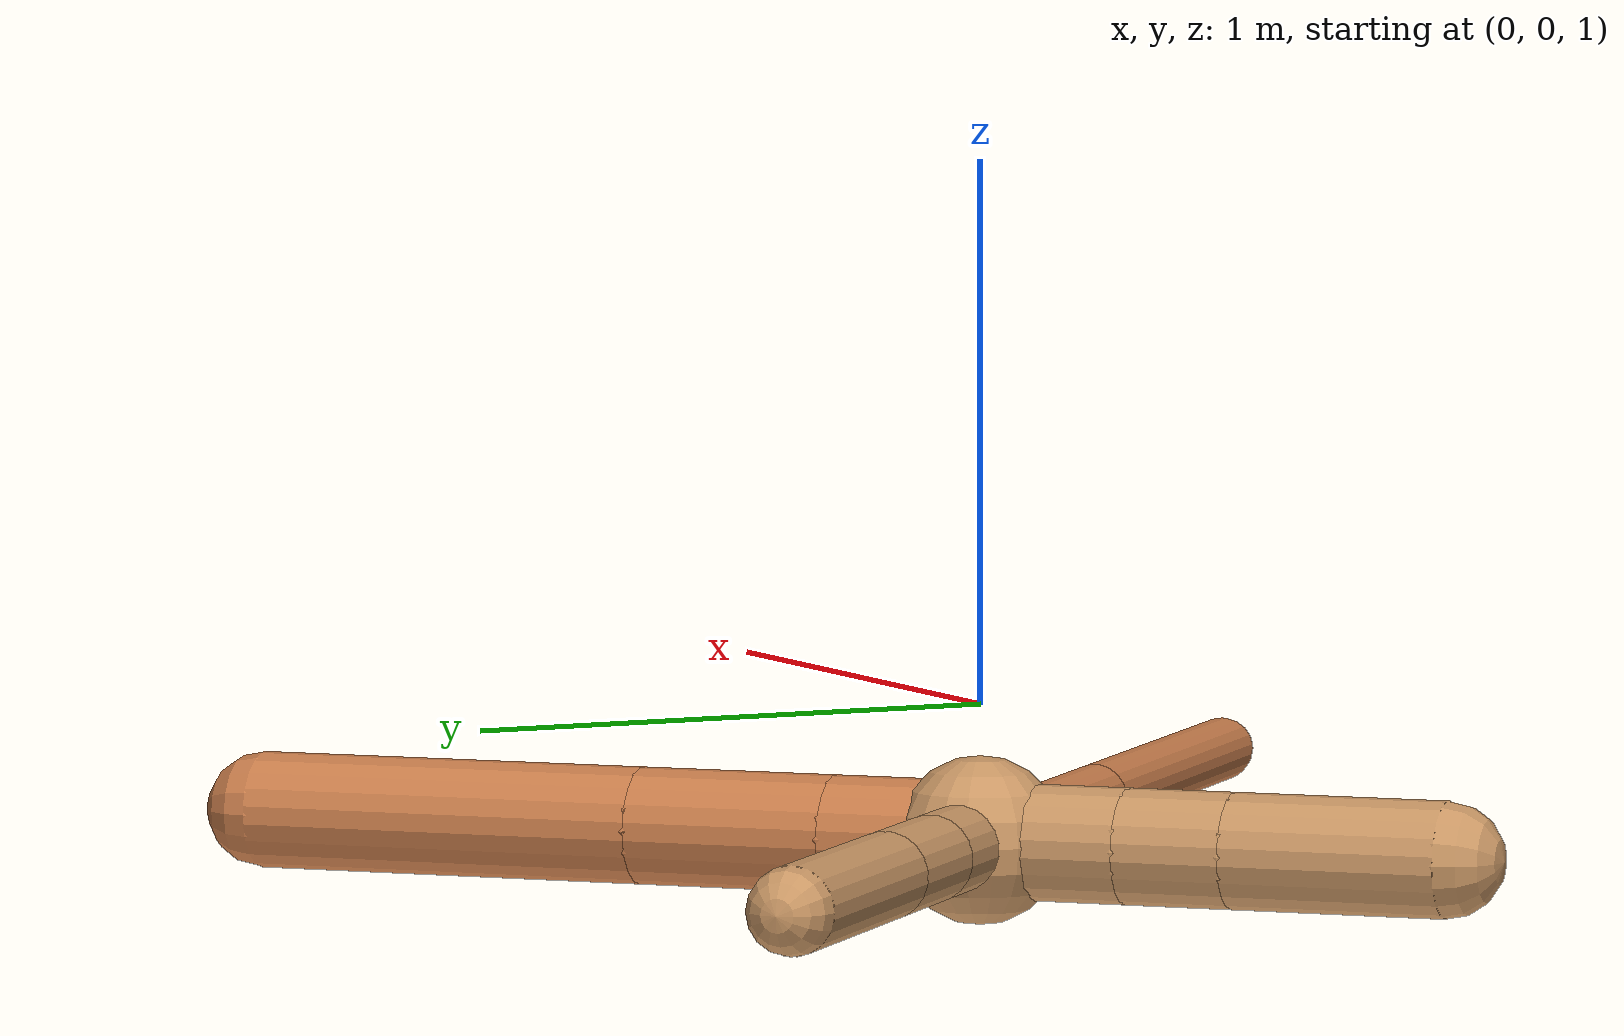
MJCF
<?xml version="1.0" ?>
<mujoco model="ant">

	<compiler angle="degree" coordinate="local" inertiafromgeom="true"/>

	<option integrator="RK4" timestep="0.01"/>

	<custom>

		<numeric data="0.0 0.0 0.55 1.0 0.0 0.0 0.0 0.0 1.0 0.0 -1.0 0.0 -1.0 0.0 1.0" name="init_qpos"/>

	</custom>

	<default>

		<joint armature="1" damping="1" limited="true"/>

		<geom conaffinity="0" condim="3" density="5.0" friction="1.5 0.1 0.1" margin="0.01" rgba="0.8 0.6 0.4 1"/>

	</default>

	<worldbody>

		<body name="torso" pos="0 0 0.75">

			<geom name="torso_geom" pos="0 0 0" size="0.1561194139027331" type="sphere"/>

			<!--joint armature="0" damping="0" limited="false" margin="0.01" name="root" pos="0 0 0" type="free"/-->

			<body name="front_left_leg" pos="0 0 0">

				<geom fromto="0 0 0 0.2 0.2 0" name="aux_1_geom" size="0.1092136528715192" type="capsule" rgba=".8 .5 .3 1"/>

				<body name="aux_1" pos="0.2 0.2 0">

					<joint axis="0 0 1" name="hip_1" pos="0.0 0.0 0.0" range="-40 40" type="hinge"/>

					<geom fromto="0 0 0 0.26812755827404183 0.26812755827404183 0" name="left_leg_geom" size="0.1092136528715192" type="capsule" rgba=".8 .5 .3 1"/>

					<body pos="0.26812755827404183 0.26812755827404183 0" name="front_left_foot">

						<joint axis="-1 1 0" name="ankle_1" pos="0.0 0.0 0.0" range="30 100" type="hinge"/>

						<geom fromto="0 0 0 0.5362551165480837 0.5362551165480837 0" name="left_ankle_geom" size="0.1092136528715192" type="capsule" rgba=".8 .5 .3 1"/>

					</body>

				</body>

			</body>

			<body name="front_right_leg" pos="0 0 0">

				<geom fromto="0 0 0 -0.2 0.2 0" name="aux_2_geom" size="0.07996688891269582" type="capsule"/>

				<body name="aux_2" pos="-0.2 0.2 0">

					<joint axis="0 0 1" name="hip_2" pos="0.0 0.0 0.0" range="-40 40" type="hinge"/>

					<geom fromto="0 0 0 -0.17923015765589012 0.17923015765589012 0" name="right_leg_geom" size="0.07996688891269582" type="capsule"/>

					<body pos="-0.17923015765589012 0.17923015765589012 0" name="front_right_foot">

						<joint axis="1 1 0" name="ankle_2" pos="0.0 0.0 0.0" range="-100 -30" type="hinge"/>

						<geom fromto="0 0 0 -0.35846031531178024 0.35846031531178024 0" name="right_ankle_geom" size="0.07996688891269582" type="capsule"/>

					</body>

				</body>

			</body>

			<body name="left_back_leg" pos="0 0 0">

				<geom fromto="0 0 0 -0.2 -0.2 0" name="aux_3_geom" size="0.10720061784981512" type="capsule"/>

				<body name="aux_3" pos="-0.2 -0.2 0">

					<joint axis="0 0 1" name="hip_3" pos="0.0 0.0 0.0" range="-40 40" type="hinge"/>

					<geom fromto="0 0 0 -0.1427193912888272 -0.1427193912888272 0" name="back_leg_geom" size="0.10720061784981512" type="capsule"/>

					<body pos="-0.1427193912888272 -0.1427193912888272 0" name="left_back_foot">

						<joint axis="-1 1 0" name="ankle_3" pos="0.0 0.0 0.0" range="-100 -30" type="hinge"/>

						<geom fromto="0 0 0 -0.2854387825776544 -0.2854387825776544 0" name="third_ankle_geom" size="0.10720061784981512" type="capsule"/>

					</body>

				</body>

			</body>

			<body name="right_back_leg" pos="0 0 0">

				<geom fromto="0 0 0 0.2 -0.2 0" name="aux_4_geom" size="0.06176694969534593" type="capsule" rgba=".8 .5 .3 1"/>

				<body name="aux_4" pos="0.2 -0.2 0">

					<joint axis="0 0 1" name="hip_4" pos="0.0 0.0 0.0" range="-40 40" type="hinge"/>

					<geom fromto="0 0 0 0.2966781339776348 -0.2966781339776348 0" name="rightback_leg_geom" size="0.06176694969534593" type="capsule" rgba=".8 .5 .3 1"/>

					<body pos="0.2966781339776348 -0.2966781339776348 0" name="right_back_foot">

						<joint axis="1 1 0" name="ankle_4" pos="0.0 0.0 0.0" range="30 100" type="hinge"/>

						<geom fromto="0 0 0 0.5933562679552696 -0.5933562679552696 0" name="fourth_ankle_geom" size="0.06176694969534593" type="capsule" rgba=".8 .5 .3 1"/>

					</body>

				</body>

			</body>

		</body>

	</worldbody>

	<actuator>

		<motor ctrllimited="true" ctrlrange="-1.0 1.0" joint="hip_4" gear="150"/>

		<motor ctrllimited="true" ctrlrange="-1.0 1.0" joint="ankle_4" gear="150"/>

		<motor ctrllimited="true" ctrlrange="-1.0 1.0" joint="hip_1" gear="150"/>

		<motor ctrllimited="true" ctrlrange="-1.0 1.0" joint="ankle_1" gear="150"/>

		<motor ctrllimited="true" ctrlrange="-1.0 1.0" joint="hip_2" gear="150"/>

		<motor ctrllimited="true" ctrlrange="-1.0 1.0" joint="ankle_2" gear="150"/>

		<motor ctrllimited="true" ctrlrange="-1.0 1.0" joint="hip_3" gear="150"/>

		<motor ctrllimited="true" ctrlrange="-1.0 1.0" joint="ankle_3" gear="150"/>

	</actuator>

</mujoco>
